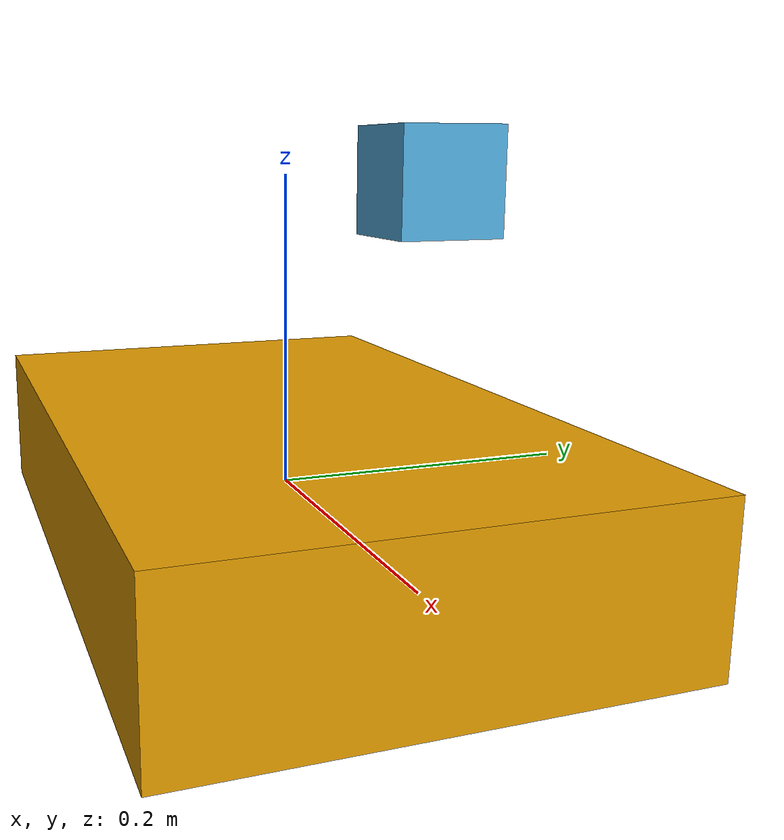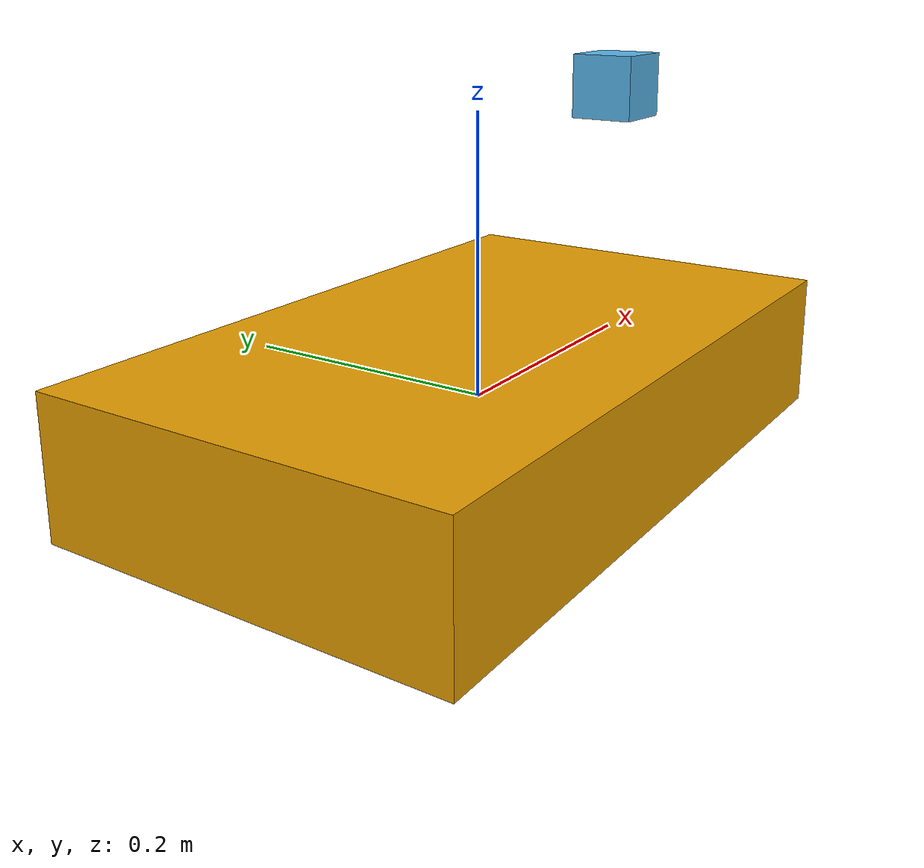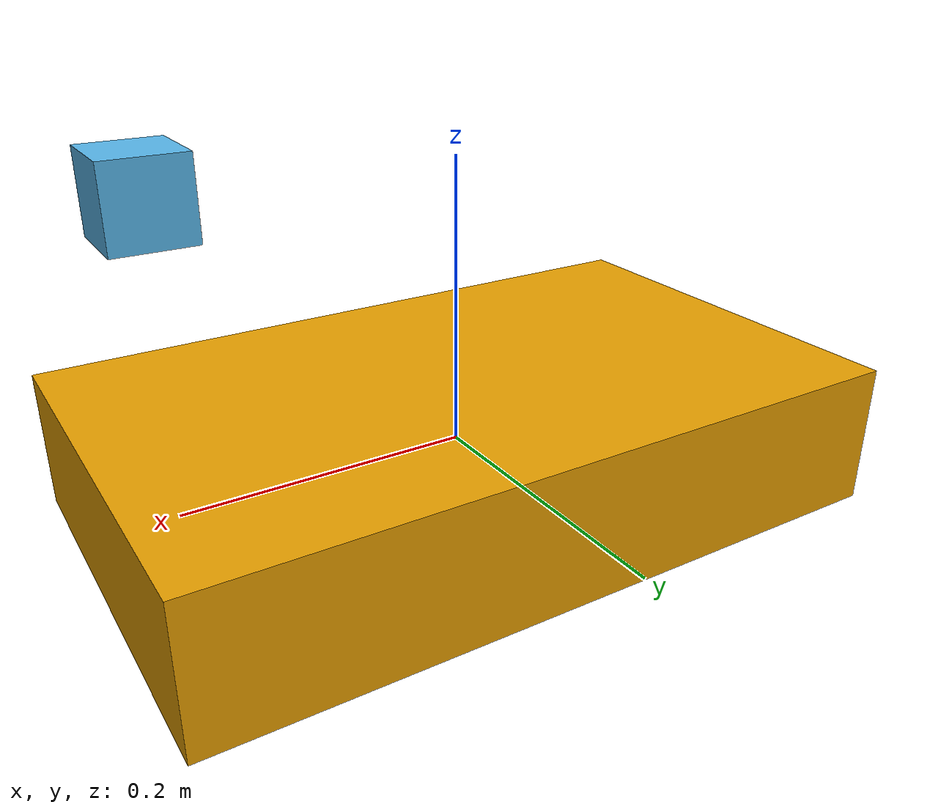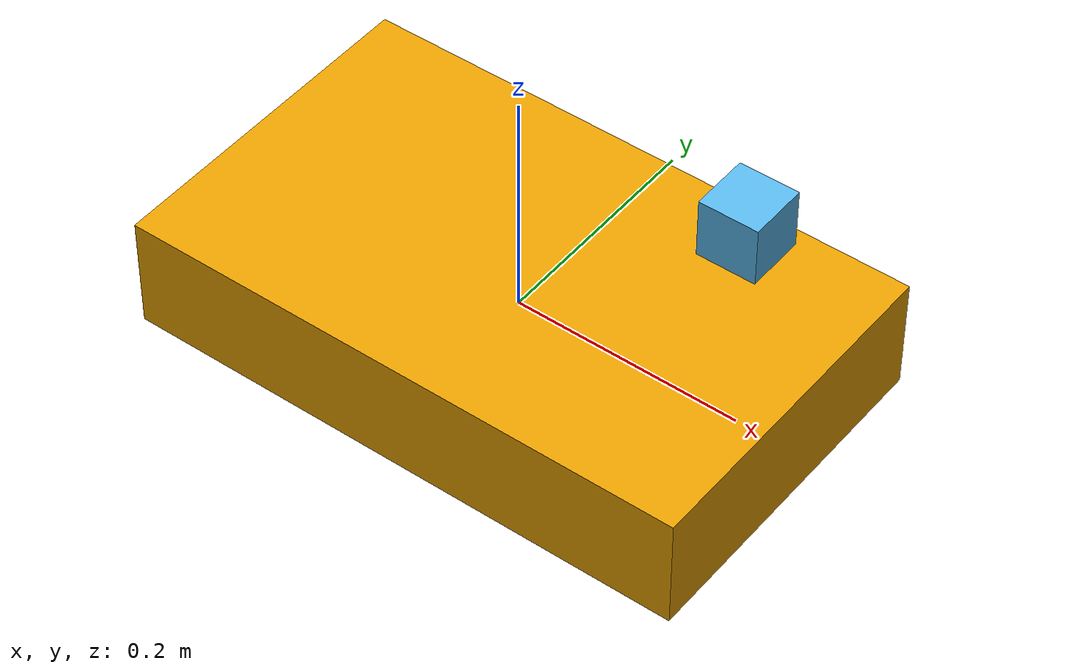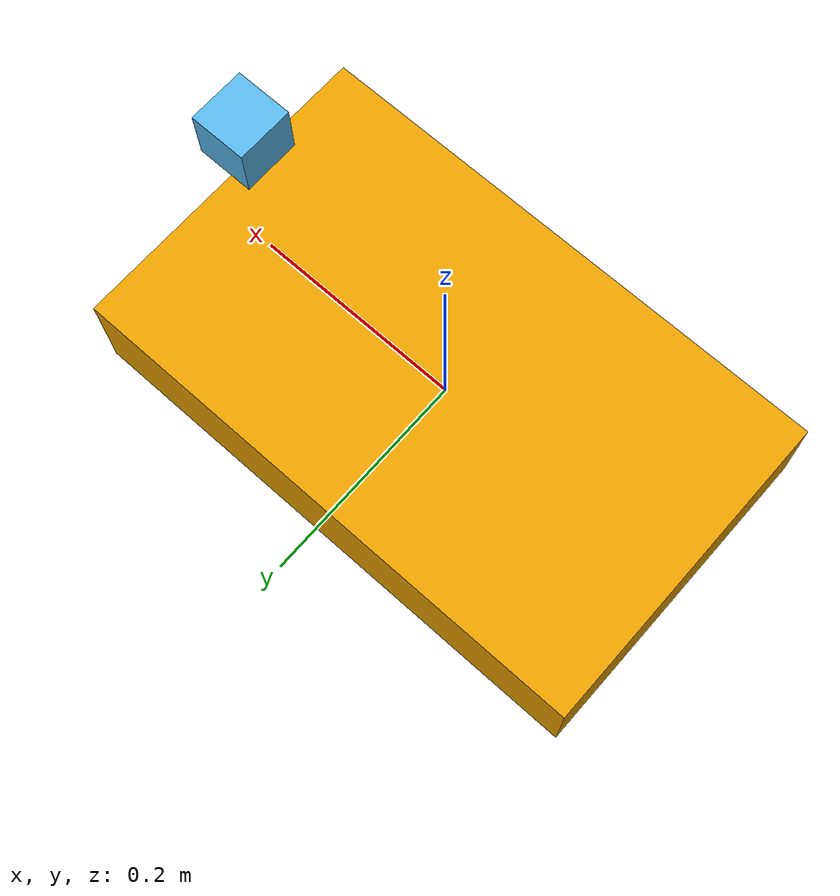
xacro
<?xml version="1.0"?>
<robot xmlns:xacro="http://www.ros.org/wiki/xacro" name="cbrn_robot">

  <link name="base_link">
    <visual>
      <geometry><box size="0.5 0.3 0.1"/></geometry>
    </visual>
    <collision>
      <geometry><box size="0.5 0.3 0.1"/></geometry>
    </collision>
    <inertial>
      <mass value="5.0"/>
      <inertia ixx="0.1" ixy="0.0" ixz="0.0" iyy="0.1" iyz="0.0" izz="0.1"/>
    </inertial>
  </link>

  <joint name="camera_joint" type="fixed">
    <parent link="base_link"/>
    <child link="camera_link"/>
    <origin xyz="0.2 0 0.2" rpy="0 0 0"/>
  </joint>

  <link name="camera_link">
    <visual>
      <geometry><box size="0.05 0.05 0.05"/></geometry>
    </visual>
  </link>

  <gazebo reference="camera_link">
    <sensor type="camera" name="my_camera_sensor">
      <update_rate>30.0</update_rate>
      <camera>
        <horizontal_fov>1.396</horizontal_fov>
        <image>
          <width>800</width>
          <height>600</height>
          <format>R8G8B8</format>
        </image>
      </camera>
      <plugin name="gazebo_ros_camera" filename="libgazebo_ros_camera.so">
        <camera_name>my_camera</camera_name>
        <image_topic_name>image_raw</image_topic_name>
        <camera_info_topic_name>camera_info</camera_info_topic_name>
      </plugin>
    </sensor>
  </gazebo>
</robot>
